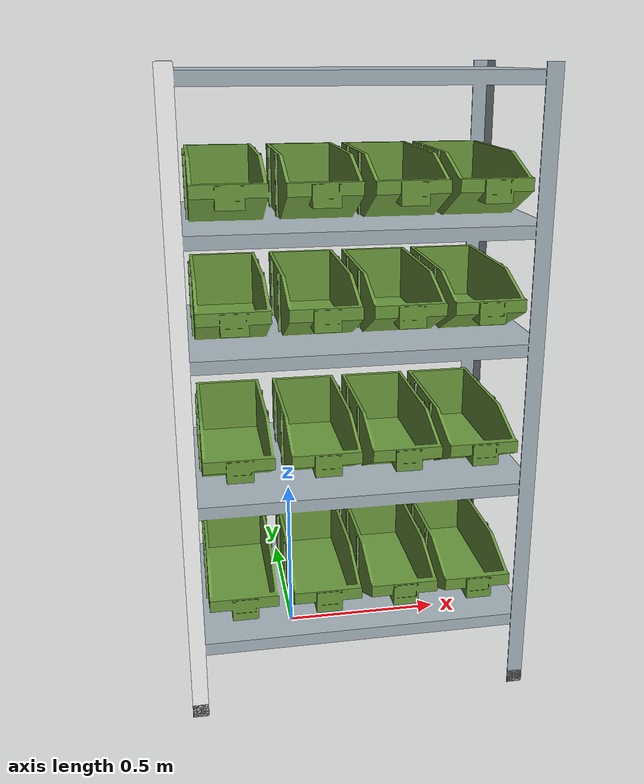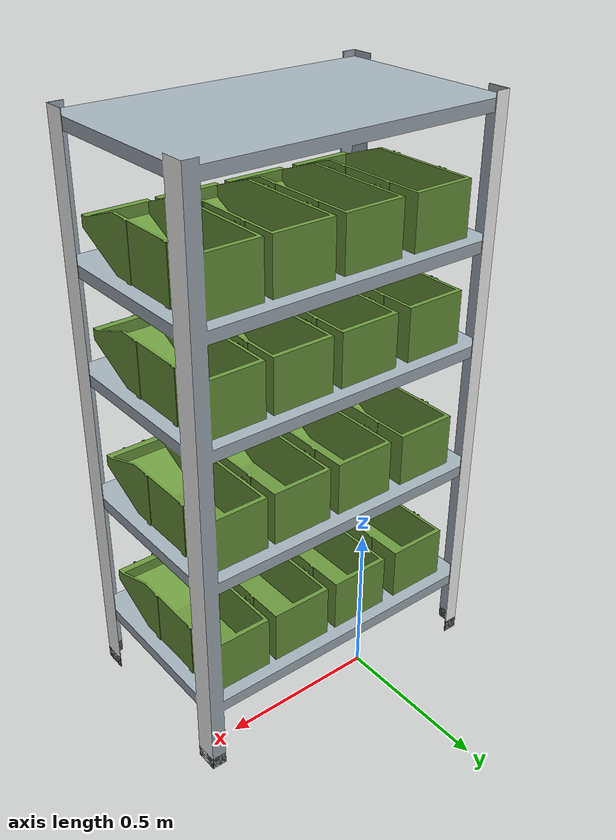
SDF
<?xml version="1.0" ?>
<sdf version="1.6">
  <model name="newshelf">
    <static>true</static>
    <link name="link">
      <collision name="collision">
        <geometry>
          <mesh>
            <scale>0.9 1.4 1</scale>
            <uri>model://newshelf/meshes/newshelf.dae</uri>
          </mesh>
        </geometry>
      </collision>
      <visual name="visual">
        <geometry>
          <mesh>
            <scale>0.9 1.4 1</scale>
            <uri>model://newshelf/meshes/newshelf.dae</uri>
          </mesh>
        </geometry>
      </visual>
    </link>
  </model>
</sdf>
